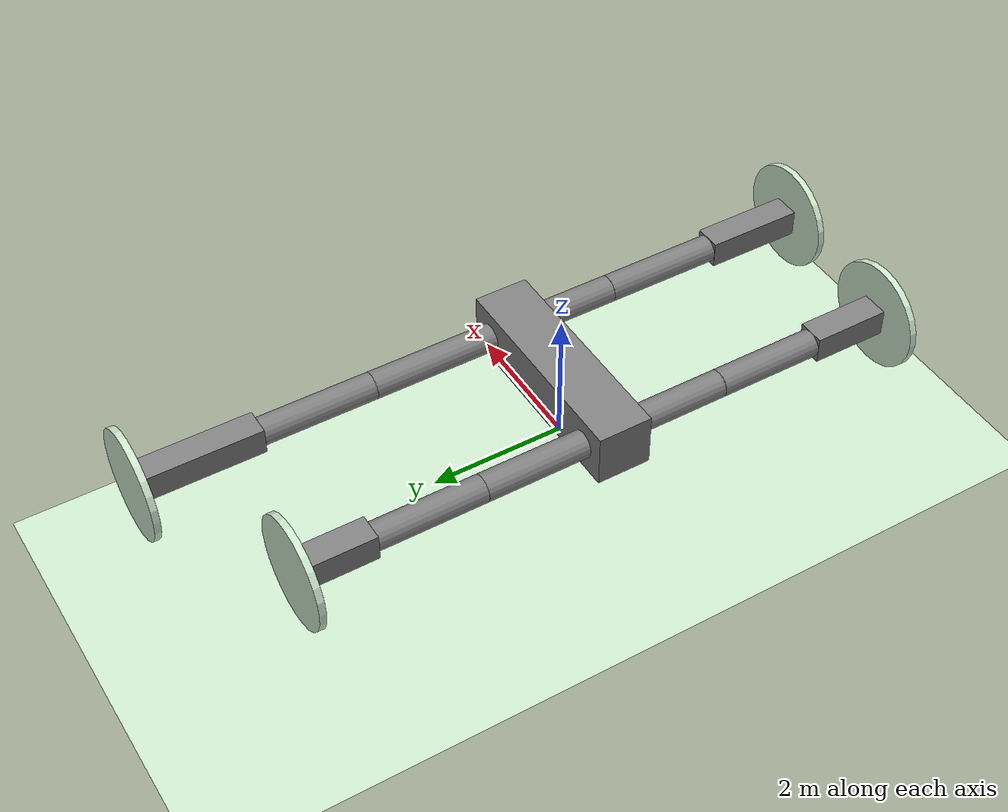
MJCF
<mujoco model="robot">
	<compiler coordinate="local" angle="degree" inertiafromgeom="true"/>
	<option timestep="0.01" impratio="1" integrator="RK4"/>
	<default>
		<default class="/">
			<geom conaffinity="0" condim="3" friction="1 0.5 0.5" density="1" margin="0.01"/>
			<default class="leg">
				<joint type="hinge" limited="true" range="-90 90" armature="1" damping="10" frictionloss="25"/>
				<motor ctrlrange="-1 1" forcerange="-1 1" gear="1"/>
				<position ctrlrange="-10 10" forcerange="-30 30" gear="6.37" kp="200" kv="1"/>
			</default>
			<default class="wheel">
				<joint type="hinge" limited="false" armature="1" damping="0.3" frictionloss="0"/>
				<geom type="cylinder" size="0.8" material="MatPlane" rgba="0.8 0.9 0.8 1" friction="1 0.005 0.5" fromto="0 -0.05 0 0 0.05 0"/>
				<motor ctrlrange="-1 1" forcerange="-150 150" gear="100"/>
				<velocity ctrlrange="-10 10" forcerange="-150 150" gear="1" kv="150"/>
			</default>
			<default class="propl">
				<mesh scale="0.01 0.01 0.01"/>
				<general ctrlrange="0 1" gear="0 50 0 0 0 0"/>
				<motor ctrlrange="0 10" gear="0 0 0 0 0 100"/>
			</default>
			<default class="propr">
				<mesh scale="0.01 0.01 0.01"/>
				<general ctrlrange="0 1" gear="0 -50 0 0 0 0"/>
				<motor ctrlrange="0 10" gear="0 0 0 0 0 100"/>
			</default>
		</default>
	</default>
	<asset>
		<texture name="texplane" type="2d" builtin="checker" rgb1="0 0 0" rgb2="1 1 1" width="100" height="100"/>
		<material name="MatPlane" class="/" texture="texplane" texrepeat="60 60" specular="1" shininess="1" reflectance="0.5"/>
	</asset>
	<worldbody>
		<light name="//unnamed_light_0" class="/" directional="true" pos="-0.5 0.5 3" dir="0 0 -1"/>
		<geom name="floor" class="/" type="plane" conaffinity="1" condim="3" size="100 100 100" material="MatPlane" rgba="0.8 0.9 0.8 1" pos="0 0 -1"/>
		<body name="torso" pos="0 0 1">
			<joint name="root" class="/" type="free" pos="0 0 0" limited="false" margin="0.01" armature="0" damping="0"/>
			<geom name="torso_geom" class="/" type="box" size="1.6 0.4 0.4" pos="0 0 0"/>
			<body name="lf_leg1" pos="1.2 1.34 0">
				<geom name="lf_leg1_geom" class="/" type="capsule" size="0.2" fromto="0 -0.939 0 0 0.939 0" pos="0 0 0"/>
				<joint name="lf_leg1_Joint_x" class="leg" pos="0 -0.939 0" axis="1 0 0"/>
				<joint name="lf_leg1_Joint_z" class="leg" pos="0 -0.939 0" axis="0 0 1"/>
				<body name="lf_leg2" pos="0 1.78 0">
					<geom name="lf_leg2_geom" class="/" type="capsule" size="0.2" fromto="0 -0.841 0 0 0.841 0" pos="0 0 0"/>
					<joint name="lf_leg2_Joint_x" class="leg" pos="0 -0.841 0" axis="1 0 0"/>
					<joint name="lf_leg2_Joint_z" class="leg" pos="0 -0.841 0" axis="0 0 1"/>
					<body name="lf_leg3" pos="0 1.75 0">
						<geom name="lf_leg3_geom" class="/" type="box" size="0.2" fromto="0 -0.904 0 0 0.904 0" pos="0 0 0"/>
						<joint name="lf_leg3_Joint_x" class="leg" pos="0 -0.904 0" axis="1 0 0"/>
						<joint name="lf_leg3_Joint_z" class="leg" pos="0 -0.904 0" axis="0 0 1"/>
						<body name="lf_motor" pos="0 0.904 0">
							<geom name="lf_motor_geom" class="wheel" pos="0 0 0"/>
							<joint name="lf_motor_y" class="wheel" pos="0 -0.1 0" axis="0 1 0"/>
							<site name="thrust1" class="/" pos="0 0 0"/>
						</body>
					</body>
				</body>
			</body>
			<body name="rf_leg1" pos="1.2 -0.974 0">
				<geom name="rf_leg1_geom" class="/" type="capsule" size="0.2" fromto="0 -0.574 0 0 0.574 0" pos="0 0 0"/>
				<joint name="rf_leg1_Joint_x" class="leg" pos="0 0.574 0" axis="1 0 0"/>
				<joint name="rf_leg1_Joint_z" class="leg" pos="0 0.574 0" axis="0 0 1"/>
				<body name="rf_leg2" pos="0 -1.44 0">
					<geom name="rf_leg2_geom" class="/" type="capsule" size="0.2" fromto="0 -0.863 0 0 0.863 0" pos="0 0 0"/>
					<joint name="rf_leg2_Joint_x" class="leg" pos="0 0.863 0" axis="1 0 0"/>
					<joint name="rf_leg2_Joint_z" class="leg" pos="0 0.863 0" axis="0 0 1"/>
					<body name="rf_leg3" pos="0 -1.61 0">
						<geom name="rf_leg3_geom" class="/" type="box" size="0.2" fromto="0 -0.744 0 0 0.744 0" pos="0 0 0"/>
						<joint name="rf_leg3_Joint_x" class="leg" pos="0 0.744 0" axis="1 0 0"/>
						<joint name="rf_leg3_Joint_z" class="leg" pos="0 0.744 0" axis="0 0 1"/>
						<body name="rf_motor" pos="0 -0.744 0">
							<geom name="rf_motor_geom" class="wheel" pos="0 0 0"/>
							<joint name="rf_motor_y" class="wheel" pos="0 0.1 0" axis="0 1 0"/>
							<site name="thrust2" class="/" pos="0 0 0"/>
						</body>
					</body>
				</body>
			</body>
			<body name="lb_leg1" pos="-1.2 1.17 0">
				<geom name="lb_leg1_geom" class="/" type="capsule" size="0.2" fromto="0 -0.767 0 0 0.767 0" pos="0 0 0"/>
				<joint name="lb_leg1_Joint_x" class="leg" pos="0 -0.767 0" axis="1 0 0"/>
				<joint name="lb_leg1_Joint_z" class="leg" pos="0 -0.767 0" axis="0 0 1"/>
				<body name="lb_leg2" pos="0 1.57 0">
					<geom name="lb_leg2_geom" class="/" type="capsule" size="0.2" fromto="0 -0.801 0 0 0.801 0" pos="0 0 0"/>
					<joint name="lb_leg2_Joint_x" class="leg" pos="0 -0.801 0" axis="1 0 0"/>
					<joint name="lb_leg2_Joint_z" class="leg" pos="0 -0.801 0" axis="0 0 1"/>
					<body name="lb_leg3" pos="0 1.35 0">
						<geom name="lb_leg3_geom" class="/" type="box" size="0.2" fromto="0 -0.546 0 0 0.546 0" pos="0 0 0"/>
						<joint name="lb_leg3_Joint_x" class="leg" pos="0 -0.546 0" axis="1 0 0"/>
						<joint name="lb_leg3_Joint_z" class="leg" pos="0 -0.546 0" axis="0 0 1"/>
						<body name="lb_motor" pos="0 0.546 0">
							<geom name="lb_motor_geom" class="wheel" pos="0 0 0"/>
							<joint name="lb_motor_y" class="wheel" pos="0 -0.1 0" axis="0 1 0"/>
							<site name="thrust3" class="/" pos="0 0 0"/>
						</body>
					</body>
				</body>
			</body>
			<body name="rb_leg1" pos="-1.2 -1.09 0">
				<geom name="rb_leg1_geom" class="/" type="capsule" size="0.2" fromto="0 -0.693 0 0 0.693 0" pos="0 0 0"/>
				<joint name="rb_leg1_Joint_x" class="leg" pos="0 0.693 0" axis="1 0 0"/>
				<joint name="rb_leg1_Joint_z" class="leg" pos="0 0.693 0" axis="0 0 1"/>
				<body name="rb_leg2" pos="0 -1.47 0">
					<geom name="rb_leg2_geom" class="/" type="capsule" size="0.2" fromto="0 -0.778 0 0 0.778 0" pos="0 0 0"/>
					<joint name="rb_leg2_Joint_x" class="leg" pos="0 0.778 0" axis="1 0 0"/>
					<joint name="rb_leg2_Joint_z" class="leg" pos="0 0.778 0" axis="0 0 1"/>
					<body name="rb_leg3" pos="0 -1.37 0">
						<geom name="rb_leg3_geom" class="/" type="box" size="0.2" fromto="0 -0.591 0 0 0.591 0" pos="0 0 0"/>
						<joint name="rb_leg3_Joint_x" class="leg" pos="0 0.591 0" axis="1 0 0"/>
						<joint name="rb_leg3_Joint_z" class="leg" pos="0 0.591 0" axis="0 0 1"/>
						<body name="rb_motor" pos="0 -0.591 0">
							<geom name="rb_motor_geom" class="wheel" pos="0 0 0"/>
							<joint name="rb_motor_y" class="wheel" pos="0 0.1 0" axis="0 1 0"/>
							<site name="thrust4" class="/" pos="0 0 0"/>
						</body>
					</body>
				</body>
			</body>
		</body>
	</worldbody>
	<actuator>
		<position name="lf_leg1_motor_x" class="leg" joint="lf_leg1_Joint_x"/>
		<position name="lf_leg1_motor_z" class="leg" joint="lf_leg1_Joint_z"/>
		<position name="lf_leg2_motor_x" class="leg" joint="lf_leg2_Joint_x"/>
		<position name="lf_leg2_motor_z" class="leg" joint="lf_leg2_Joint_z"/>
		<position name="lf_leg3_motor_x" class="leg" joint="lf_leg3_Joint_x"/>
		<position name="lf_leg3_motor_z" class="leg" joint="lf_leg3_Joint_z"/>
		<position name="rf_leg1_motor_x" class="leg" joint="rf_leg1_Joint_x"/>
		<position name="rf_leg1_motor_z" class="leg" joint="rf_leg1_Joint_z"/>
		<position name="rf_leg2_motor_x" class="leg" joint="rf_leg2_Joint_x"/>
		<position name="rf_leg2_motor_z" class="leg" joint="rf_leg2_Joint_z"/>
		<position name="rf_leg3_motor_x" class="leg" joint="rf_leg3_Joint_x"/>
		<position name="rf_leg3_motor_z" class="leg" joint="rf_leg3_Joint_z"/>
		<position name="lb_leg1_motor_x" class="leg" joint="lb_leg1_Joint_x"/>
		<position name="lb_leg2_motor_x" class="leg" joint="lb_leg2_Joint_x"/>
		<position name="lb_leg3_motor_x" class="leg" joint="lb_leg3_Joint_x"/>
		<position name="rb_leg1_motor_x" class="leg" joint="rb_leg1_Joint_x"/>
		<position name="rb_leg2_motor_x" class="leg" joint="rb_leg2_Joint_x"/>
		<position name="rb_leg3_motor_x" class="leg" joint="rb_leg3_Joint_x"/>
		<position name="lb_leg1_motor_z" class="leg" joint="lb_leg1_Joint_z"/>
		<position name="lb_leg2_motor_z" class="leg" joint="lb_leg2_Joint_z"/>
		<position name="lb_leg3_motor_z" class="leg" joint="lb_leg3_Joint_z"/>
		<position name="rb_leg1_motor_z" class="leg" joint="rb_leg1_Joint_z"/>
		<position name="rb_leg2_motor_z" class="leg" joint="rb_leg2_Joint_z"/>
		<position name="rb_leg3_motor_z" class="leg" joint="rb_leg3_Joint_z"/>
		<velocity name="lf_motor" class="wheel" joint="lf_motor_y"/>
		<velocity name="rf_motor" class="wheel" joint="rf_motor_y"/>
		<velocity name="lb_motor" class="wheel" joint="lb_motor_y"/>
		<velocity name="rb_motor" class="wheel" joint="rb_motor_y"/>
		<general name="thrust_1" class="propl" site="thrust1"/>
		<general name="thrust_2" class="propr" site="thrust2"/>
		<general name="thrust_3" class="propl" site="thrust3"/>
		<general name="thrust_4" class="propr" site="thrust4"/>
	</actuator>
</mujoco>
